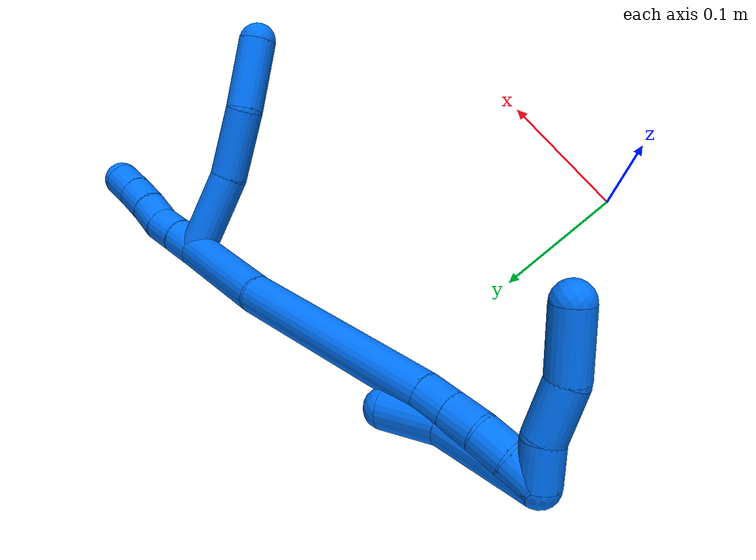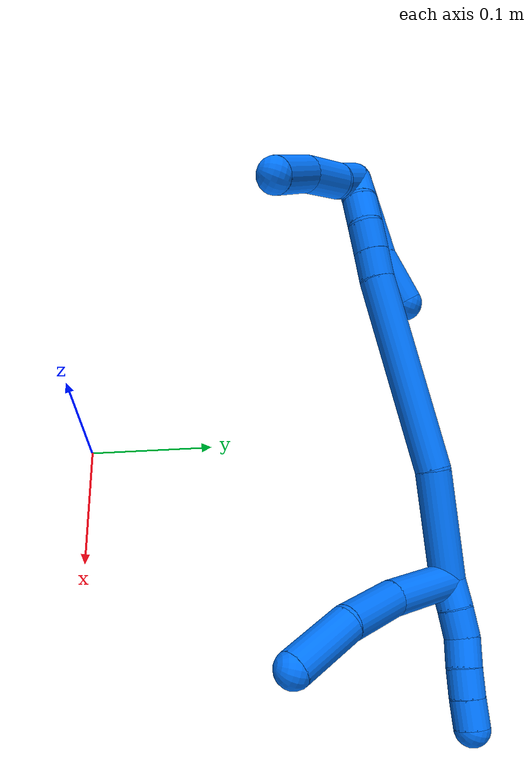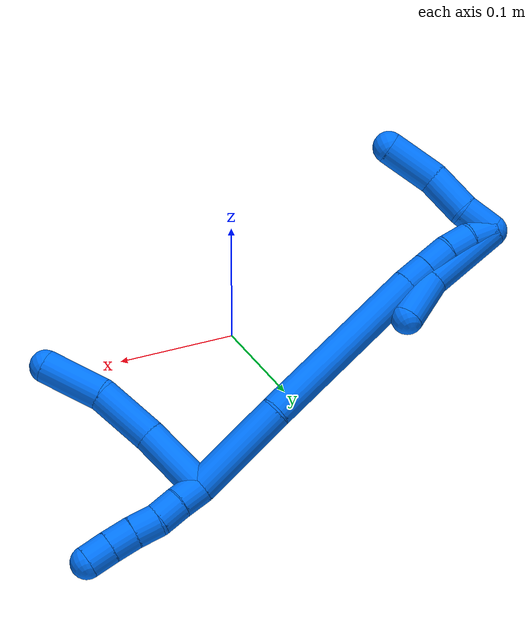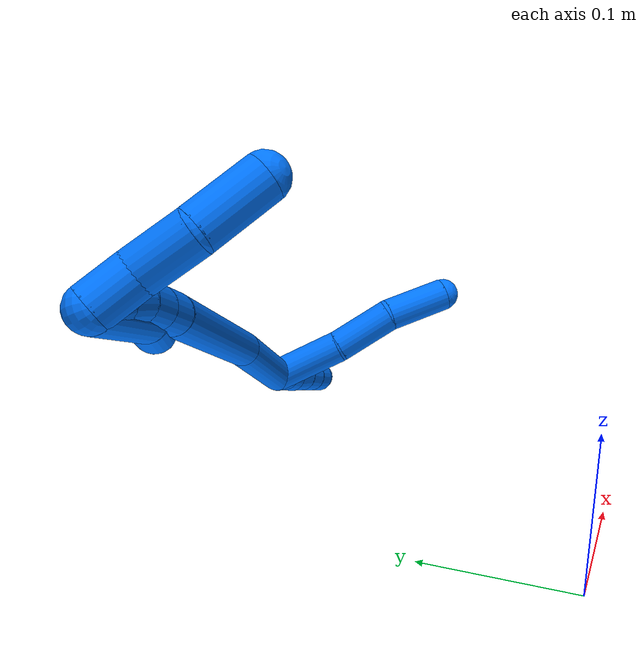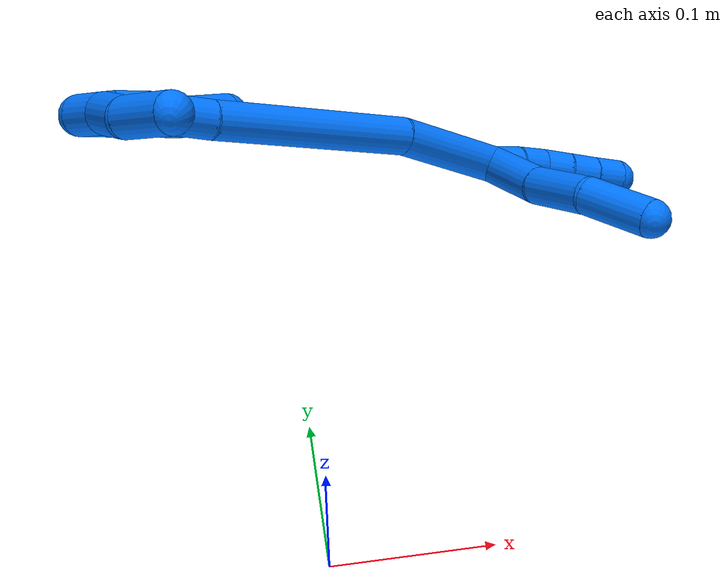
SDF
<sdf version="1.7">
 <world name="default">
  <model name="14">
   <static>0</static>
   <link name="14">
    <collision name="collision-cylinder-e_1_2_8">
     <pose>0.012902 -0.00261 -0.024061 3.03355 0.489762 2.71539</pose>
     <geometry><cylinder><radius>0.0125</radius><length>0.054852</length></cylinder></geometry>
     <surface>
      <friction><ode><mu>1.16</mu><mu2>1.16</mu2><slip1>0</slip1><slip2>0</slip2></ode></friction>
      <contact><ode><kp>1e+06</kp><kd>1</kd><max_vel>0</max_vel><min_depth>0.001</min_depth></ode></contact>
     </surface>
    </collision>
    <visual name="visual-cylinder-e_1_2_8">
     <pose>0.012902 -0.00261 -0.024061 3.03355 0.489762 2.71539</pose>
     <geometry><cylinder><radius>0.0125</radius><length>0.054852</length></cylinder></geometry>
     <material><ambient>0 0.462745 1 1</ambient></material>
    </visual>
    <collision name="collision-cylinder-e_2_8_9">
     <pose>0.039517 -0.009787 -0.066594 2.8992 0.624456 2.41999</pose>
     <geometry><cylinder><radius>0.0125</radius><length>0.046911</length></cylinder></geometry>
     <surface>
      <friction><ode><mu>1.16</mu><mu2>1.16</mu2><slip1>0</slip1><slip2>0</slip2></ode></friction>
      <contact><ode><kp>1e+06</kp><kd>1</kd><max_vel>0</max_vel><min_depth>0.001</min_depth></ode></contact>
     </surface>
    </collision>
    <visual name="visual-cylinder-e_2_8_9">
     <pose>0.039517 -0.009787 -0.066594 2.8992 0.624456 2.41999</pose>
     <geometry><cylinder><radius>0.0125</radius><length>0.046911</length></cylinder></geometry>
     <material><ambient>0 0.462745 1 1</ambient></material>
    </visual>
    <collision name="collision-cylinder-e_3_9_6">
     <pose>0.070507 -0.014165 -0.101895 -3.13033 0.798531 -3.11489</pose>
     <geometry><cylinder><radius>0.0125</radius><length>0.048237</length></cylinder></geometry>
     <surface>
      <friction><ode><mu>1.16</mu><mu2>1.16</mu2><slip1>0</slip1><slip2>0</slip2></ode></friction>
      <contact><ode><kp>1e+06</kp><kd>1</kd><max_vel>0</max_vel><min_depth>0.001</min_depth></ode></contact>
     </surface>
    </collision>
    <visual name="visual-cylinder-e_3_9_6">
     <pose>0.070507 -0.014165 -0.101895 -3.13033 0.798531 -3.11489</pose>
     <geometry><cylinder><radius>0.0125</radius><length>0.048237</length></cylinder></geometry>
     <material><ambient>0 0.462745 1 1</ambient></material>
    </visual>
    <collision name="collision-cylinder-e_1_2_10">
     <pose>0.008984 0.001841 0.003987 -0.432643 1.1161 -0.272664</pose>
     <geometry><cylinder><radius>0.0125</radius><length>0.02</length></cylinder></geometry>
     <surface>
      <friction><ode><mu>1.16</mu><mu2>1.16</mu2><slip1>0</slip1><slip2>0</slip2></ode></friction>
      <contact><ode><kp>1e+06</kp><kd>1</kd><max_vel>0</max_vel><min_depth>0.001</min_depth></ode></contact>
     </surface>
    </collision>
    <visual name="visual-cylinder-e_1_2_10">
     <pose>0.008984 0.001841 0.003987 -0.432643 1.1161 -0.272664</pose>
     <geometry><cylinder><radius>0.0125</radius><length>0.02</length></cylinder></geometry>
     <material><ambient>0 0.462745 1 1</ambient></material>
    </visual>
    <collision name="collision-cylinder-e_2_10_11">
     <pose>0.026687 0.006328 0.012095 -0.570723 1.05903 -0.340083</pose>
     <geometry><cylinder><radius>0.0125</radius><length>0.02</length></cylinder></geometry>
     <surface>
      <friction><ode><mu>1.16</mu><mu2>1.16</mu2><slip1>0</slip1><slip2>0</slip2></ode></friction>
      <contact><ode><kp>1e+06</kp><kd>1</kd><max_vel>0</max_vel><min_depth>0.001</min_depth></ode></contact>
     </surface>
    </collision>
    <visual name="visual-cylinder-e_2_10_11">
     <pose>0.026687 0.006328 0.012095 -0.570723 1.05903 -0.340083</pose>
     <geometry><cylinder><radius>0.0125</radius><length>0.02</length></cylinder></geometry>
     <material><ambient>0 0.462745 1 1</ambient></material>
    </visual>
    <collision name="collision-cylinder-e_3_11_12">
     <pose>0.044902 0.011416 0.018181 -0.893378 1.25204 -0.666783</pose>
     <geometry><cylinder><radius>0.0125</radius><length>0.02</length></cylinder></geometry>
     <surface>
      <friction><ode><mu>1.16</mu><mu2>1.16</mu2><slip1>0</slip1><slip2>0</slip2></ode></friction>
      <contact><ode><kp>1e+06</kp><kd>1</kd><max_vel>0</max_vel><min_depth>0.001</min_depth></ode></contact>
     </surface>
    </collision>
    <visual name="visual-cylinder-e_3_11_12">
     <pose>0.044902 0.011416 0.018181 -0.893378 1.25204 -0.666783</pose>
     <geometry><cylinder><radius>0.0125</radius><length>0.02</length></cylinder></geometry>
     <material><ambient>0 0.462745 1 1</ambient></material>
    </visual>
    <collision name="collision-cylinder-e_4_12_13">
     <pose>0.063647 0.016564 0.022816 -0.791919 1.18069 -0.54622</pose>
     <geometry><cylinder><radius>0.0125</radius><length>0.02</length></cylinder></geometry>
     <surface>
      <friction><ode><mu>1.16</mu><mu2>1.16</mu2><slip1>0</slip1><slip2>0</slip2></ode></friction>
      <contact><ode><kp>1e+06</kp><kd>1</kd><max_vel>0</max_vel><min_depth>0.001</min_depth></ode></contact>
     </surface>
    </collision>
    <visual name="visual-cylinder-e_4_12_13">
     <pose>0.063647 0.016564 0.022816 -0.791919 1.18069 -0.54622</pose>
     <geometry><cylinder><radius>0.0125</radius><length>0.02</length></cylinder></geometry>
     <material><ambient>0 0.462745 1 1</ambient></material>
    </visual>
    <collision name="collision-cylinder-e_5_13_5">
     <pose>0.082027 0.021886 0.028613 -0.696834 1.15107 -0.462891</pose>
     <geometry><cylinder><radius>0.0125</radius><length>0.02</length></cylinder></geometry>
     <surface>
      <friction><ode><mu>1.16</mu><mu2>1.16</mu2><slip1>0</slip1><slip2>0</slip2></ode></friction>
      <contact><ode><kp>1e+06</kp><kd>1</kd><max_vel>0</max_vel><min_depth>0.001</min_depth></ode></contact>
     </surface>
    </collision>
    <visual name="visual-cylinder-e_5_13_5">
     <pose>0.082027 0.021886 0.028613 -0.696834 1.15107 -0.462891</pose>
     <geometry><cylinder><radius>0.0125</radius><length>0.02</length></cylinder></geometry>
     <material><ambient>0 0.462745 1 1</ambient></material>
    </visual>
    <collision name="collision-cylinder-e_1_2_14">
     <pose>-0.031377 -0.016986 -0.015836 2.32118 -0.933652 -1.71775</pose>
     <geometry><cylinder><radius>0.0125</radius><length>0.078073</length></cylinder></geometry>
     <surface>
      <friction><ode><mu>1.16</mu><mu2>1.16</mu2><slip1>0</slip1><slip2>0</slip2></ode></friction>
      <contact><ode><kp>1e+06</kp><kd>1</kd><max_vel>0</max_vel><min_depth>0.001</min_depth></ode></contact>
     </surface>
    </collision>
    <visual name="visual-cylinder-e_1_2_14">
     <pose>-0.031377 -0.016986 -0.015836 2.32118 -0.933652 -1.71775</pose>
     <geometry><cylinder><radius>0.0125</radius><length>0.078073</length></cylinder></geometry>
     <material><ambient>0 0.462745 1 1</ambient></material>
    </visual>
    <collision name="collision-cylinder-e_2_14_15">
     <pose>-0.121317 -0.053305 -0.065327 2.62016 -0.985499 -2.2193</pose>
     <geometry><cylinder><radius>0.0125</radius><length>0.140513</length></cylinder></geometry>
     <surface>
      <friction><ode><mu>1.16</mu><mu2>1.16</mu2><slip1>0</slip1><slip2>0</slip2></ode></friction>
      <contact><ode><kp>1e+06</kp><kd>1</kd><max_vel>0</max_vel><min_depth>0.001</min_depth></ode></contact>
     </surface>
    </collision>
    <visual name="visual-cylinder-e_2_14_15">
     <pose>-0.121317 -0.053305 -0.065327 2.62016 -0.985499 -2.2193</pose>
     <geometry><cylinder><radius>0.0125</radius><length>0.140513</length></cylinder></geometry>
     <material><ambient>0 0.462745 1 1</ambient></material>
    </visual>
    <collision name="collision-cylinder-e_3_15_16">
     <pose>-0.188624 -0.075595 -0.103055 2.5137 -1.04867 -2.11846</pose>
     <geometry><cylinder><radius>0.0125</radius><length>0.02018</length></cylinder></geometry>
     <surface>
      <friction><ode><mu>1.16</mu><mu2>1.16</mu2><slip1>0</slip1><slip2>0</slip2></ode></friction>
      <contact><ode><kp>1e+06</kp><kd>1</kd><max_vel>0</max_vel><min_depth>0.001</min_depth></ode></contact>
     </surface>
    </collision>
    <visual name="visual-cylinder-e_3_15_16">
     <pose>-0.188624 -0.075595 -0.103055 2.5137 -1.04867 -2.11846</pose>
     <geometry><cylinder><radius>0.0125</radius><length>0.02018</length></cylinder></geometry>
     <material><ambient>0 0.462745 1 1</ambient></material>
    </visual>
    <collision name="collision-cylinder-e_4_16_17">
     <pose>-0.206525 -0.081497 -0.111404 2.5383 -1.05478 -2.1603</pose>
     <geometry><cylinder><radius>0.0125</radius><length>0.021051</length></cylinder></geometry>
     <surface>
      <friction><ode><mu>1.16</mu><mu2>1.16</mu2><slip1>0</slip1><slip2>0</slip2></ode></friction>
      <contact><ode><kp>1e+06</kp><kd>1</kd><max_vel>0</max_vel><min_depth>0.001</min_depth></ode></contact>
     </surface>
    </collision>
    <visual name="visual-cylinder-e_4_16_17">
     <pose>-0.206525 -0.081497 -0.111404 2.5383 -1.05478 -2.1603</pose>
     <geometry><cylinder><radius>0.0125</radius><length>0.021051</length></cylinder></geometry>
     <material><ambient>0 0.462745 1 1</ambient></material>
    </visual>
    <collision name="collision-cylinder-e_5_17_18">
     <pose>-0.225109 -0.085815 -0.118908 2.73979 -1.2147 -2.57149</pose>
     <geometry><cylinder><radius>0.0125</radius><length>0.02012</length></cylinder></geometry>
     <surface>
      <friction><ode><mu>1.16</mu><mu2>1.16</mu2><slip1>0</slip1><slip2>0</slip2></ode></friction>
      <contact><ode><kp>1e+06</kp><kd>1</kd><max_vel>0</max_vel><min_depth>0.001</min_depth></ode></contact>
     </surface>
    </collision>
    <visual name="visual-cylinder-e_5_17_18">
     <pose>-0.225109 -0.085815 -0.118908 2.73979 -1.2147 -2.57149</pose>
     <geometry><cylinder><radius>0.0125</radius><length>0.02012</length></cylinder></geometry>
     <material><ambient>0 0.462745 1 1</ambient></material>
    </visual>
    <collision name="collision-cylinder-e_6_18_1">
     <pose>-0.244261 -0.087012 -0.1246 -3.07063 -1.32202 3.05038</pose>
     <geometry><cylinder><radius>0.0125</radius><length>0.020063</length></cylinder></geometry>
     <surface>
      <friction><ode><mu>1.16</mu><mu2>1.16</mu2><slip1>0</slip1><slip2>0</slip2></ode></friction>
      <contact><ode><kp>1e+06</kp><kd>1</kd><max_vel>0</max_vel><min_depth>0.001</min_depth></ode></contact>
     </surface>
    </collision>
    <visual name="visual-cylinder-e_6_18_1">
     <pose>-0.244261 -0.087012 -0.1246 -3.07063 -1.32202 3.05038</pose>
     <geometry><cylinder><radius>0.0125</radius><length>0.020063</length></cylinder></geometry>
     <material><ambient>0 0.462745 1 1</ambient></material>
    </visual>
    <collision name="collision-cylinder-e_1_1_19">
     <pose>-0.22675 -0.080597 -0.112886 -0.414596 1.05366 -0.243462</pose>
     <geometry><cylinder><radius>0.0125</radius><length>0.062661</length></cylinder></geometry>
     <surface>
      <friction><ode><mu>1.16</mu><mu2>1.16</mu2><slip1>0</slip1><slip2>0</slip2></ode></friction>
      <contact><ode><kp>1e+06</kp><kd>1</kd><max_vel>0</max_vel><min_depth>0.001</min_depth></ode></contact>
     </surface>
    </collision>
    <visual name="visual-cylinder-e_1_1_19">
     <pose>-0.22675 -0.080597 -0.112886 -0.414596 1.05366 -0.243462</pose>
     <geometry><cylinder><radius>0.0125</radius><length>0.062661</length></cylinder></geometry>
     <material><ambient>0 0.462745 1 1</ambient></material>
    </visual>
    <collision name="collision-cylinder-e_2_19_4">
     <pose>-0.186358 -0.070554 -0.086023 -0.291325 0.782131 -0.120823</pose>
     <geometry><cylinder><radius>0.0125</radius><length>0.037339</length></cylinder></geometry>
     <surface>
      <friction><ode><mu>1.16</mu><mu2>1.16</mu2><slip1>0</slip1><slip2>0</slip2></ode></friction>
      <contact><ode><kp>1e+06</kp><kd>1</kd><max_vel>0</max_vel><min_depth>0.001</min_depth></ode></contact>
     </surface>
    </collision>
    <visual name="visual-cylinder-e_2_19_4">
     <pose>-0.186358 -0.070554 -0.086023 -0.291325 0.782131 -0.120823</pose>
     <geometry><cylinder><radius>0.0125</radius><length>0.037339</length></cylinder></geometry>
     <material><ambient>0 0.462745 1 1</ambient></material>
    </visual>
    <collision name="collision-cylinder-e_1_1_20">
     <pose>-0.245069 -0.090783 -0.135508 2.70449 0.763129 2.13046</pose>
     <geometry><cylinder><radius>0.0125</radius><length>0.025796</length></cylinder></geometry>
     <surface>
      <friction><ode><mu>1.16</mu><mu2>1.16</mu2><slip1>0</slip1><slip2>0</slip2></ode></friction>
      <contact><ode><kp>1e+06</kp><kd>1</kd><max_vel>0</max_vel><min_depth>0.001</min_depth></ode></contact>
     </surface>
    </collision>
    <visual name="visual-cylinder-e_1_1_20">
     <pose>-0.245069 -0.090783 -0.135508 2.70449 0.763129 2.13046</pose>
     <geometry><cylinder><radius>0.0125</radius><length>0.025796</length></cylinder></geometry>
     <material><ambient>0 0.462745 1 1</ambient></material>
    </visual>
    <collision name="collision-cylinder-e_2_20_21">
     <pose>-0.227849 -0.098816 -0.157931 2.8571 0.518256 2.15095</pose>
     <geometry><cylinder><radius>0.0125</radius><length>0.033529</length></cylinder></geometry>
     <surface>
      <friction><ode><mu>1.16</mu><mu2>1.16</mu2><slip1>0</slip1><slip2>0</slip2></ode></friction>
      <contact><ode><kp>1e+06</kp><kd>1</kd><max_vel>0</max_vel><min_depth>0.001</min_depth></ode></contact>
     </surface>
    </collision>
    <visual name="visual-cylinder-e_2_20_21">
     <pose>-0.227849 -0.098816 -0.157931 2.8571 0.518256 2.15095</pose>
     <geometry><cylinder><radius>0.0125</radius><length>0.033529</length></cylinder></geometry>
     <material><ambient>0 0.462745 1 1</ambient></material>
    </visual>
    <collision name="collision-cylinder-e_3_21_3">
     <pose>-0.20499 -0.109137 -0.184672 2.6873 0.797569 2.13814</pose>
     <geometry><cylinder><radius>0.0125</radius><length>0.040675</length></cylinder></geometry>
     <surface>
      <friction><ode><mu>1.16</mu><mu2>1.16</mu2><slip1>0</slip1><slip2>0</slip2></ode></friction>
      <contact><ode><kp>1e+06</kp><kd>1</kd><max_vel>0</max_vel><min_depth>0.001</min_depth></ode></contact>
     </surface>
    </collision>
    <visual name="visual-cylinder-e_3_21_3">
     <pose>-0.20499 -0.109137 -0.184672 2.6873 0.797569 2.13814</pose>
     <geometry><cylinder><radius>0.0125</radius><length>0.040675</length></cylinder></geometry>
     <material><ambient>0 0.462745 1 1</ambient></material>
    </visual>
    <collision name="collision-sphere-3">
     <pose>-0.190435 -0.11537 -0.197436 0 -0 0</pose>
     <geometry><sphere><radius>0.0125</radius></sphere></geometry>
     <surface>
      <friction><ode><mu>1.16</mu><mu2>1.16</mu2><slip1>0</slip1><slip2>0</slip2></ode></friction>
      <contact><ode><kp>1e+06</kp><kd>1</kd><max_vel>0</max_vel><min_depth>0.001</min_depth></ode></contact>
     </surface>
    </collision>
    <visual name="visual-sphere-3">
     <pose>-0.190435 -0.11537 -0.197436 0 -0 0</pose>
     <geometry><sphere><radius>0.0125</radius></sphere></geometry>
     <material><ambient>0 0.462745 1 1</ambient></material>
    </visual>
    <collision name="collision-sphere-21">
     <pose>-0.219545 -0.102903 -0.171908 0 -0 0</pose>
     <geometry><sphere><radius>0.0125</radius></sphere></geometry>
     <surface>
      <friction><ode><mu>1.16</mu><mu2>1.16</mu2><slip1>0</slip1><slip2>0</slip2></ode></friction>
      <contact><ode><kp>1e+06</kp><kd>1</kd><max_vel>0</max_vel><min_depth>0.001</min_depth></ode></contact>
     </surface>
    </collision>
    <visual name="visual-sphere-21">
     <pose>-0.219545 -0.102903 -0.171908 0 -0 0</pose>
     <geometry><sphere><radius>0.0125</radius></sphere></geometry>
     <material><ambient>0 0.462745 1 1</ambient></material>
    </visual>
    <collision name="collision-sphere-20">
     <pose>-0.236154 -0.094728 -0.143953 0 -0 0</pose>
     <geometry><sphere><radius>0.0125</radius></sphere></geometry>
     <surface>
      <friction><ode><mu>1.16</mu><mu2>1.16</mu2><slip1>0</slip1><slip2>0</slip2></ode></friction>
      <contact><ode><kp>1e+06</kp><kd>1</kd><max_vel>0</max_vel><min_depth>0.001</min_depth></ode></contact>
     </surface>
    </collision>
    <visual name="visual-sphere-20">
     <pose>-0.236154 -0.094728 -0.143953 0 -0 0</pose>
     <geometry><sphere><radius>0.0125</radius></sphere></geometry>
     <material><ambient>0 0.462745 1 1</ambient></material>
    </visual>
    <collision name="collision-sphere-4">
     <pose>-0.1732 -0.06675 -0.073337 0 -0 0</pose>
     <geometry><sphere><radius>0.0125</radius></sphere></geometry>
     <surface>
      <friction><ode><mu>1.16</mu><mu2>1.16</mu2><slip1>0</slip1><slip2>0</slip2></ode></friction>
      <contact><ode><kp>1e+06</kp><kd>1</kd><max_vel>0</max_vel><min_depth>0.001</min_depth></ode></contact>
     </surface>
    </collision>
    <visual name="visual-sphere-4">
     <pose>-0.1732 -0.06675 -0.073337 0 -0 0</pose>
     <geometry><sphere><radius>0.0125</radius></sphere></geometry>
     <material><ambient>0 0.462745 1 1</ambient></material>
    </visual>
    <collision name="collision-sphere-11">
     <pose>0.035406 0.008974 0.016216 0 -0 0</pose>
     <geometry><sphere><radius>0.0125</radius></sphere></geometry>
     <surface>
      <friction><ode><mu>1.16</mu><mu2>1.16</mu2><slip1>0</slip1><slip2>0</slip2></ode></friction>
      <contact><ode><kp>1e+06</kp><kd>1</kd><max_vel>0</max_vel><min_depth>0.001</min_depth></ode></contact>
     </surface>
    </collision>
    <visual name="visual-sphere-11">
     <pose>0.035406 0.008974 0.016216 0 -0 0</pose>
     <geometry><sphere><radius>0.0125</radius></sphere></geometry>
     <material><ambient>0 0.462745 1 1</ambient></material>
    </visual>
    <collision name="collision-sphere-10">
     <pose>0.017968 0.003683 0.007974 0 -0 0</pose>
     <geometry><sphere><radius>0.0125</radius></sphere></geometry>
     <surface>
      <friction><ode><mu>1.16</mu><mu2>1.16</mu2><slip1>0</slip1><slip2>0</slip2></ode></friction>
      <contact><ode><kp>1e+06</kp><kd>1</kd><max_vel>0</max_vel><min_depth>0.001</min_depth></ode></contact>
     </surface>
    </collision>
    <visual name="visual-sphere-10">
     <pose>0.017968 0.003683 0.007974 0 -0 0</pose>
     <geometry><sphere><radius>0.0125</radius></sphere></geometry>
     <material><ambient>0 0.462745 1 1</ambient></material>
    </visual>
    <collision name="collision-sphere-6">
     <pose>0.087784 -0.013975 -0.118723 0 -0 0</pose>
     <geometry><sphere><radius>0.0125</radius></sphere></geometry>
     <surface>
      <friction><ode><mu>1.16</mu><mu2>1.16</mu2><slip1>0</slip1><slip2>0</slip2></ode></friction>
      <contact><ode><kp>1e+06</kp><kd>1</kd><max_vel>0</max_vel><min_depth>0.001</min_depth></ode></contact>
     </surface>
    </collision>
    <visual name="visual-sphere-6">
     <pose>0.087784 -0.013975 -0.118723 0 -0 0</pose>
     <geometry><sphere><radius>0.0125</radius></sphere></geometry>
     <material><ambient>0 0.462745 1 1</ambient></material>
    </visual>
    <collision name="collision-sphere-9">
     <pose>0.05323 -0.014354 -0.085067 0 -0 0</pose>
     <geometry><sphere><radius>0.0125</radius></sphere></geometry>
     <surface>
      <friction><ode><mu>1.16</mu><mu2>1.16</mu2><slip1>0</slip1><slip2>0</slip2></ode></friction>
      <contact><ode><kp>1e+06</kp><kd>1</kd><max_vel>0</max_vel><min_depth>0.001</min_depth></ode></contact>
     </surface>
    </collision>
    <visual name="visual-sphere-9">
     <pose>0.05323 -0.014354 -0.085067 0 -0 0</pose>
     <geometry><sphere><radius>0.0125</radius></sphere></geometry>
     <material><ambient>0 0.462745 1 1</ambient></material>
    </visual>
    <collision name="collision-sphere-2">
     <geometry><sphere><radius>0.0125</radius></sphere></geometry>
     <surface>
      <friction><ode><mu>1.16</mu><mu2>1.16</mu2><slip1>0</slip1><slip2>0</slip2></ode></friction>
      <contact><ode><kp>1e+06</kp><kd>1</kd><max_vel>0</max_vel><min_depth>0.001</min_depth></ode></contact>
     </surface>
    </collision>
    <visual name="visual-sphere-2">
     <geometry><sphere><radius>0.0125</radius></sphere></geometry>
     <material><ambient>0 0.462745 1 1</ambient></material>
    </visual>
    <collision name="collision-sphere-19">
     <pose>-0.199516 -0.074358 -0.098709 0 -0 0</pose>
     <geometry><sphere><radius>0.0125</radius></sphere></geometry>
     <surface>
      <friction><ode><mu>1.16</mu><mu2>1.16</mu2><slip1>0</slip1><slip2>0</slip2></ode></friction>
      <contact><ode><kp>1e+06</kp><kd>1</kd><max_vel>0</max_vel><min_depth>0.001</min_depth></ode></contact>
     </surface>
    </collision>
    <visual name="visual-sphere-19">
     <pose>-0.199516 -0.074358 -0.098709 0 -0 0</pose>
     <geometry><sphere><radius>0.0125</radius></sphere></geometry>
     <material><ambient>0 0.462745 1 1</ambient></material>
    </visual>
    <collision name="collision-sphere-8">
     <pose>0.025803 -0.00522 -0.048122 0 -0 0</pose>
     <geometry><sphere><radius>0.0125</radius></sphere></geometry>
     <surface>
      <friction><ode><mu>1.16</mu><mu2>1.16</mu2><slip1>0</slip1><slip2>0</slip2></ode></friction>
      <contact><ode><kp>1e+06</kp><kd>1</kd><max_vel>0</max_vel><min_depth>0.001</min_depth></ode></contact>
     </surface>
    </collision>
    <visual name="visual-sphere-8">
     <pose>0.025803 -0.00522 -0.048122 0 -0 0</pose>
     <geometry><sphere><radius>0.0125</radius></sphere></geometry>
     <material><ambient>0 0.462745 1 1</ambient></material>
    </visual>
    <collision name="collision-sphere-12">
     <pose>0.054398 0.013858 0.020145 0 -0 0</pose>
     <geometry><sphere><radius>0.0125</radius></sphere></geometry>
     <surface>
      <friction><ode><mu>1.16</mu><mu2>1.16</mu2><slip1>0</slip1><slip2>0</slip2></ode></friction>
      <contact><ode><kp>1e+06</kp><kd>1</kd><max_vel>0</max_vel><min_depth>0.001</min_depth></ode></contact>
     </surface>
    </collision>
    <visual name="visual-sphere-12">
     <pose>0.054398 0.013858 0.020145 0 -0 0</pose>
     <geometry><sphere><radius>0.0125</radius></sphere></geometry>
     <material><ambient>0 0.462745 1 1</ambient></material>
    </visual>
    <collision name="collision-sphere-13">
     <pose>0.072895 0.019271 0.025488 0 -0 0</pose>
     <geometry><sphere><radius>0.0125</radius></sphere></geometry>
     <surface>
      <friction><ode><mu>1.16</mu><mu2>1.16</mu2><slip1>0</slip1><slip2>0</slip2></ode></friction>
      <contact><ode><kp>1e+06</kp><kd>1</kd><max_vel>0</max_vel><min_depth>0.001</min_depth></ode></contact>
     </surface>
    </collision>
    <visual name="visual-sphere-13">
     <pose>0.072895 0.019271 0.025488 0 -0 0</pose>
     <geometry><sphere><radius>0.0125</radius></sphere></geometry>
     <material><ambient>0 0.462745 1 1</ambient></material>
    </visual>
    <collision name="collision-sphere-5">
     <pose>0.091159 0.024502 0.031738 0 -0 0</pose>
     <geometry><sphere><radius>0.0125</radius></sphere></geometry>
     <surface>
      <friction><ode><mu>1.16</mu><mu2>1.16</mu2><slip1>0</slip1><slip2>0</slip2></ode></friction>
      <contact><ode><kp>1e+06</kp><kd>1</kd><max_vel>0</max_vel><min_depth>0.001</min_depth></ode></contact>
     </surface>
    </collision>
    <visual name="visual-sphere-5">
     <pose>0.091159 0.024502 0.031738 0 -0 0</pose>
     <geometry><sphere><radius>0.0125</radius></sphere></geometry>
     <material><ambient>0 0.462745 1 1</ambient></material>
    </visual>
    <collision name="collision-sphere-14">
     <pose>-0.062755 -0.033971 -0.031672 0 -0 0</pose>
     <geometry><sphere><radius>0.0125</radius></sphere></geometry>
     <surface>
      <friction><ode><mu>1.16</mu><mu2>1.16</mu2><slip1>0</slip1><slip2>0</slip2></ode></friction>
      <contact><ode><kp>1e+06</kp><kd>1</kd><max_vel>0</max_vel><min_depth>0.001</min_depth></ode></contact>
     </surface>
    </collision>
    <visual name="visual-sphere-14">
     <pose>-0.062755 -0.033971 -0.031672 0 -0 0</pose>
     <geometry><sphere><radius>0.0125</radius></sphere></geometry>
     <material><ambient>0 0.462745 1 1</ambient></material>
    </visual>
    <collision name="collision-sphere-15">
     <pose>-0.179879 -0.072638 -0.098982 0 -0 0</pose>
     <geometry><sphere><radius>0.0125</radius></sphere></geometry>
     <surface>
      <friction><ode><mu>1.16</mu><mu2>1.16</mu2><slip1>0</slip1><slip2>0</slip2></ode></friction>
      <contact><ode><kp>1e+06</kp><kd>1</kd><max_vel>0</max_vel><min_depth>0.001</min_depth></ode></contact>
     </surface>
    </collision>
    <visual name="visual-sphere-15">
     <pose>-0.179879 -0.072638 -0.098982 0 -0 0</pose>
     <geometry><sphere><radius>0.0125</radius></sphere></geometry>
     <material><ambient>0 0.462745 1 1</ambient></material>
    </visual>
    <collision name="collision-sphere-16">
     <pose>-0.19737 -0.078551 -0.107127 0 -0 0</pose>
     <geometry><sphere><radius>0.0125</radius></sphere></geometry>
     <surface>
      <friction><ode><mu>1.16</mu><mu2>1.16</mu2><slip1>0</slip1><slip2>0</slip2></ode></friction>
      <contact><ode><kp>1e+06</kp><kd>1</kd><max_vel>0</max_vel><min_depth>0.001</min_depth></ode></contact>
     </surface>
    </collision>
    <visual name="visual-sphere-16">
     <pose>-0.19737 -0.078551 -0.107127 0 -0 0</pose>
     <geometry><sphere><radius>0.0125</radius></sphere></geometry>
     <material><ambient>0 0.462745 1 1</ambient></material>
    </visual>
    <collision name="collision-sphere-17">
     <pose>-0.21568 -0.084444 -0.11568 0 -0 0</pose>
     <geometry><sphere><radius>0.0125</radius></sphere></geometry>
     <surface>
      <friction><ode><mu>1.16</mu><mu2>1.16</mu2><slip1>0</slip1><slip2>0</slip2></ode></friction>
      <contact><ode><kp>1e+06</kp><kd>1</kd><max_vel>0</max_vel><min_depth>0.001</min_depth></ode></contact>
     </surface>
    </collision>
    <visual name="visual-sphere-17">
     <pose>-0.21568 -0.084444 -0.11568 0 -0 0</pose>
     <geometry><sphere><radius>0.0125</radius></sphere></geometry>
     <material><ambient>0 0.462745 1 1</ambient></material>
    </visual>
    <collision name="collision-sphere-18">
     <pose>-0.234538 -0.087187 -0.122136 0 -0 0</pose>
     <geometry><sphere><radius>0.0125</radius></sphere></geometry>
     <surface>
      <friction><ode><mu>1.16</mu><mu2>1.16</mu2><slip1>0</slip1><slip2>0</slip2></ode></friction>
      <contact><ode><kp>1e+06</kp><kd>1</kd><max_vel>0</max_vel><min_depth>0.001</min_depth></ode></contact>
     </surface>
    </collision>
    <visual name="visual-sphere-18">
     <pose>-0.234538 -0.087187 -0.122136 0 -0 0</pose>
     <geometry><sphere><radius>0.0125</radius></sphere></geometry>
     <material><ambient>0 0.462745 1 1</ambient></material>
    </visual>
    <collision name="collision-sphere-1">
     <pose>-0.253984 -0.086837 -0.127064 0 -0 0</pose>
     <geometry><sphere><radius>0.0125</radius></sphere></geometry>
     <surface>
      <friction><ode><mu>1.16</mu><mu2>1.16</mu2><slip1>0</slip1><slip2>0</slip2></ode></friction>
      <contact><ode><kp>1e+06</kp><kd>1</kd><max_vel>0</max_vel><min_depth>0.001</min_depth></ode></contact>
     </surface>
    </collision>
    <visual name="visual-sphere-1">
     <pose>-0.253984 -0.086837 -0.127064 0 -0 0</pose>
     <geometry><sphere><radius>0.0125</radius></sphere></geometry>
     <material><ambient>0 0.462745 1 1</ambient></material>
    </visual>
    <inertial>
     <pose>-0.093412 -0.044578 -0.071954 0 -0 0</pose>
     <mass>0.75</mass>
     <inertia>
      <ixx>-0.000209</ixx>
      <ixy>0</ixy>
      <ixz>0</ixz>
      <iyy>0.000195</iyy>
      <iyz>0</iyz>
      <izz>0.000242</izz>
     </inertia>
    </inertial>
   </link>
   <pose>0.148097 0.265264 0.047059 -1.97186 -0.001332 -0.139392</pose>
  </model>
 </world>
</sdf>
